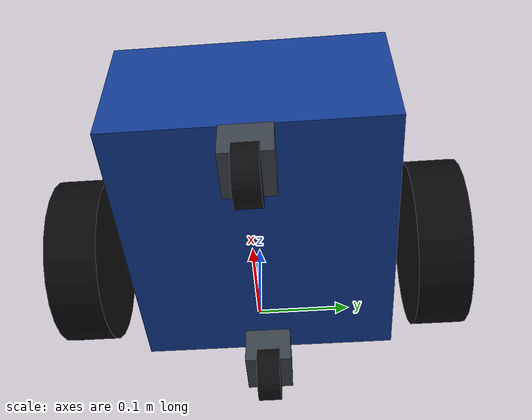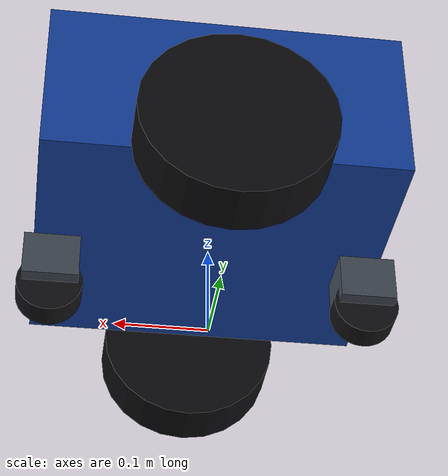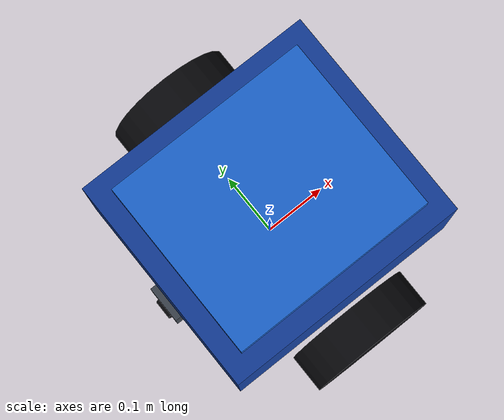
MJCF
<mujoco model="base_chassis">
  <!-- 差速小车底盘 —— 造型与真万向脚轮参照 mujoco-pzc/MuJoCo 的网球抓取小车,
       轮位拓扑用中置双驱动轮 + 前后万向脚轮: 滚转由双轮承担(驱动轮永不卸载),
       俯仰由前后脚轮承担. 高重心机械臂下这比"前驱+单后脚轮"稳定得多. -->
  <compiler angle="radian" autolimits="true"/>
  <option timestep="0.002" integrator="implicitfast" impratio="10"/>

  <default>
    <default class="body_blue">
      <geom rgba="0.08 0.25 0.62 1"/>
    </default>
    <default class="plate_blue">
      <geom rgba="0.12 0.42 0.85 1"/>
    </default>
    <default class="drive_wheel">
      <geom type="cylinder" size="0.1 0.03" rgba="0.04 0.04 0.05 1"
            friction="1.2 0.005 0.0001" condim="3" mass="2.0"
            solref="0.005 1" solimp="0.95 0.99 0.001"/>
      <joint type="hinge" axis="0 1 0" armature="0.1" damping="0.05" frictionloss="0.05"/>
    </default>
  </default>

  <worldbody>
    <body name="base" pos="0 0 0.1">
      <joint name="base_ref" type="free"/>
      <!-- 车身+顶板+立柱合成惯量, 质心压低 -->
      <inertial pos="0 0 0.08" mass="55" diaginertia="1.2 1.5 0.9"/>
      <geom class="body_blue" name="chassis" type="box" size="0.19 0.17 0.09" pos="0 0 0.09"/>
      <geom class="plate_blue" name="top_plate" type="box" size="0.16 0.14 0.012" pos="0 0 0.19"/>
      <!-- 车头前向相机: 俯角30°, 看前方地面 (机器人的"眼睛") -->
      <camera name="front_cam" pos="0.16 0 0.16" quat="0.6124 0.3536 -0.3536 -0.6124" fovy="75"/>

      <site name="arm_mount" pos="0 0 0.20" size="0.005" rgba="0 0 0 0"/>

      <!-- 中置双驱动轮 (差速), 关节轴 = 本体 y, ctrl 正 = 前进 -->
      <body name="wheel_left" pos="0 0.21 0">
        <joint name="wheel_left_joint" class="drive_wheel"/>
        <geom class="drive_wheel" name="wheel_left_geom" euler="1.5708 0 0"/>
      </body>
      <body name="wheel_right" pos="0 -0.21 0">
        <joint name="wheel_right_joint" class="drive_wheel"/>
        <geom class="drive_wheel" name="wheel_right_geom" euler="1.5708 0 0"/>
      </body>

      <!-- 前后真万向脚轮 (参考车结构: 绕 z 偏转 + 滚轮, 近零滚阻), 抬高 3mm:
           常态三点支撑(双轮+受压侧脚轮), 消除四点共面静不定 -->
      <body name="caster_front" pos="0.17 0 -0.017">
        <joint name="caster_swivel_f" type="hinge" axis="0 0 1" damping="0.3"/>
        <geom name="caster_fork_f" type="box" pos="0 0 -0.02" size="0.03 0.03 0.025"
              rgba="0.25 0.28 0.32 1" mass="0.03" contype="0" conaffinity="0"/>
        <body name="caster_wheel_f" pos="0 0 -0.045" quat="0.7071 -0.7071 0 0">
          <joint name="caster_roll_f" type="hinge" axis="0 0 1" damping="0.01"/>
          <geom name="caster_wheel_f_geom" type="cylinder" size="0.035 0.015"
                rgba="0.06 0.06 0.07 1" mass="0.02" contype="0" conaffinity="0"/>
          <!-- 球型碰撞体承担支撑: 各向同性近零摩擦, 自旋不卡(轮子仅作外观) -->
          <geom name="caster_ball_f_geom" type="sphere" size="0.035"
                rgba="0.06 0.06 0.07 0" mass="0.08" condim="1"
                friction="0.001 0.001 0.001" solref="0.005 1" solimp="0.95 0.99 0.001"/>
        </body>
      </body>
      <body name="caster_rear" pos="-0.17 0 -0.017">
        <joint name="caster_swivel_r" type="hinge" axis="0 0 1" damping="0.3"/>
        <geom name="caster_fork_r" type="box" pos="0 0 -0.02" size="0.03 0.03 0.025"
              rgba="0.25 0.28 0.32 1" mass="0.03" contype="0" conaffinity="0"/>
        <body name="caster_wheel_r" pos="0 0 -0.045" quat="0.7071 -0.7071 0 0">
          <joint name="caster_roll_r" type="hinge" axis="0 0 1" damping="0.01"/>
          <geom name="caster_wheel_r_geom" type="cylinder" size="0.035 0.015"
                rgba="0.06 0.06 0.07 1" mass="0.02" contype="0" conaffinity="0"/>
          <!-- 球型碰撞体承担支撑: 各向同性近零摩擦, 自旋不卡(轮子仅作外观) -->
          <geom name="caster_ball_r_geom" type="sphere" size="0.035"
                rgba="0.06 0.06 0.07 0" mass="0.08" condim="1"
                friction="0.001 0.001 0.001" solref="0.005 1" solimp="0.95 0.99 0.001"/>
        </body>
      </body>
    </body>
  </worldbody>

  <actuator>
    <!-- ctrl 单位 = 轮角速度 rad/s -->
    <velocity name="wheel_left_vel" joint="wheel_left_joint" kv="100" ctrlrange="-5 5"/>
    <velocity name="wheel_right_vel" joint="wheel_right_joint" kv="100" ctrlrange="-5 5"/>
  </actuator>
</mujoco>
